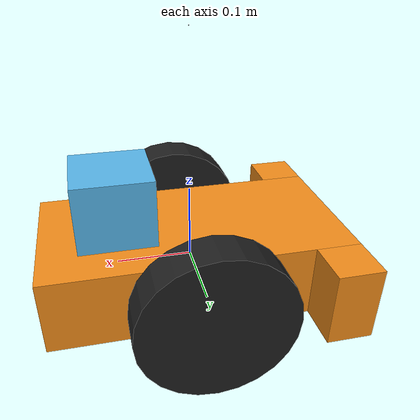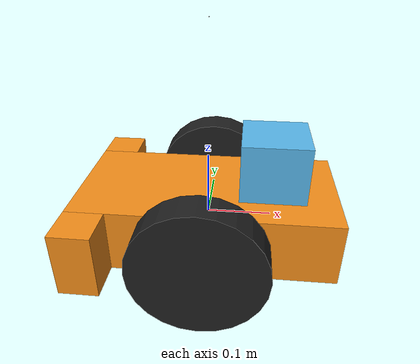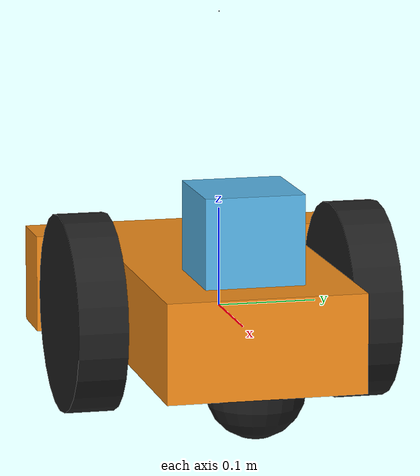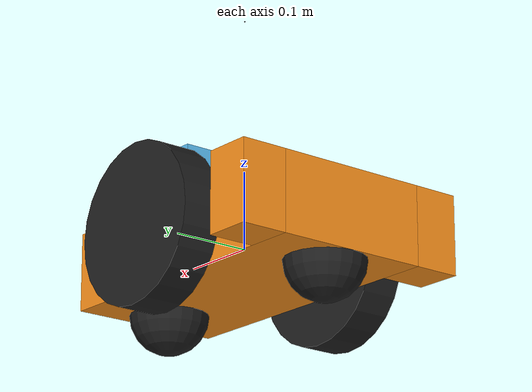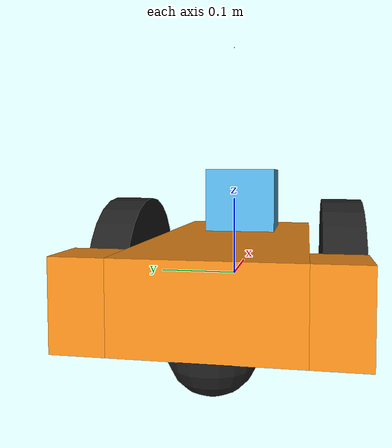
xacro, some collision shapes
<?xml version='1.0'?>

<robot name="robot_model" xmlns:xacro="http://www.ros.org/wiki/xacro">

  <xacro:include filename="$(find ros_tutorial)/urdf/robot_model.gazebo" />
  <link name="robot_footprint"></link>

  <gazebo reference="chassis">
    <material>Gazebo/Orange</material>
  </gazebo>

  <gazebo reference="front_caster">
    <selfCollide>false</selfCollide>
    <material>Gazebo/Black</material>
    <mu1>0</mu1>
    <mu2>0</mu2>
    <minDepth>0.01</minDepth>
    <maxVel>100.0</maxVel>
  </gazebo>

  <gazebo reference="back_caster">
    <selfCollide>false</selfCollide>
    <material>Gazebo/Black</material>
    <mu1>0</mu1>
    <mu2>0</mu2>
    <minDepth>0.01</minDepth>
    <maxVel>100.0</maxVel>
  </gazebo>

  <gazebo reference="right_pad">
    <material>Gazebo/Orange</material>
  </gazebo>
  <gazebo reference="left_pad">
    <material>Gazebo/Orange</material>
  </gazebo>
  <gazebo reference="left_wheel">
    <selfCollid>false</selfCollid>
    <material>Gazebo/Black</material>
    <mu1>10</mu1>
    <mu2>10</mu2>
    <minDepth>0.01</minDepth>
    <maxVel>100.0</maxVel>
  </gazebo>
  <gazebo reference="right_wheel">
    <selfCollid>false</selfCollid>
    <material>Gazebo/Black</material>
    <mu1>10</mu1>
    <mu2>10</mu2>
    <minDepth>0.01</minDepth>
    <maxVel>100.0</maxVel>
  </gazebo>
  <gazebo reference="camera">
    <material>Gazebo/Black</material>
  </gazebo>

  <joint name="robot_footprint_joint" type="fixed">
    <origin xyz="0 0 0" rpy="0 0 0" />
    <parent link="robot_footprint"/>
    <child link="chassis" />
  </joint>

  <link name='chassis'>
    <pose>0 0 0.1 0 0 0</pose>

    <inertial>
      <mass value="15.0"/>
      <origin xyz="0.0 0 0" rpy=" 0 0 0"/>
      <inertia
          ixx="0.1" ixy="0" ixz="0"
          iyy="0.1" iyz="0"
          izz="0.1"
      />
    </inertial>

    <collision name='chassis_collision'>
      <origin xyz="0 0 0" rpy=" 0 0 0"/>
      <geometry>
        <box size=".4 .2 .1"/>
      </geometry>
    </collision>

    <visual name='chassis_visual'>
      <origin xyz="0 0 0" rpy=" 0 0 0"/>
      <geometry>
        <box size=".4 .2 .1"/>
      </geometry>
    </visual>

  </link>

  <link name="front_caster">
    <pose>0 0 0 0 0 0</pose>
    <inertial>
      <mass value="2.0"/>
      <origin xyz="0.0 0 0" rpy=" 0 0 0"/>
      <inertia
              ixx="0.1" ixy="0" ixz="0"
              iyy="0.1" iyz="0"
              izz="0.1"
      />
    </inertial>
    <collision name='front_caster_collision'>
      <origin xyz="0. 0. 0." rpy=" 0 0 0"/>
      <geometry>
        <sphere radius="0.05"/>
      </geometry>
    </collision>

    <visual name='front_caster_visual'>
      <origin xyz="0. 0. 0." rpy=" 0 0 0"/>
      <geometry>
        <sphere radius="0.05"/>
      </geometry>
    </visual>
  </link>

  <joint type="fixed" name="front_caster_joint">
    <origin xyz="0.15 0 -0.05" rpy="0 0 0"/>
    <child link="front_caster"/>
    <parent link="chassis"/>
    <axis xyz="0 1 0" rpy="0 0 0"/>
  </joint>

  <link name="back_caster">
    <pose>0 0 0 0 0 0</pose>
    <inertial>
      <mass value="2.0"/>
      <origin xyz="0.0 0 0" rpy=" 0 0 0"/>
      <inertia
              ixx="0.1" ixy="0" ixz="0"
              iyy="0.1" iyz="0"
              izz="0.1"
      />
    </inertial>
    <collision name='back_caster_collision'>
      <origin xyz="0 0 0" rpy=" 0 0 0"/>
      <geometry>
        <sphere radius="0.05"/>
      </geometry>
    </collision>

    <visual name='back_caster_visual'>
      <origin xyz="0 0 0" rpy=" 0 0 0"/>
      <geometry>
        <sphere radius="0.05"/>
      </geometry>
    </visual>
  </link>

  <joint type="fixed" name="back_caster_joint">
    <origin xyz="-0.15 0 -0.05" rpy="0 0 0"/>
    <child link="back_caster"/>
    <parent link="chassis"/>
    <axis xyz="0 1 0" rpy="0 0 0"/>
  </joint>

  <link name="left_wheel">
    <inertial>
      <mass value="5.0"/>
      <origin xyz="0.0 0 0" rpy=" 0 0 0"/>
      <inertia
              ixx="0.1" ixy="0" ixz="0"
              iyy="0.1" iyz="0"
              izz="0.1"
      />
    </inertial>

    <visual name='left_wheel_visual'>
      <origin xyz="0 0 0" rpy=" 0 1.5707 1.5707"/>
      <geometry>
        <cylinder radius="0.1" length="0.05"/>
      </geometry>
    </visual>

    <collision name='left_wheel_collision'>
      <origin xyz="0 0 0" rpy=" 0 1.5707 1.5707"/>
      <geometry>
        <cylinder radius="0.1" length="0.05"/>
      </geometry>
    </collision>
  </link>

  <joint type="continuous" name="left_wheel_hinge">
    <origin xyz="0 0.14 0" rpy="0 0 0"/>
    <child link="left_wheel"/>
    <parent link="chassis"/>
    <axis xyz="0 1 0" rpy="0 0 0"/>
    <limit effort="100000" velocity="10000"/>
    <dynamics damping="1.0" friction="0.0"/>
  </joint>

  <link name="right_wheel">
    <inertial>
      <mass value="5.0"/>
      <origin xyz="0.0 0 0" rpy=" 0 0 0"/>
      <inertia
              ixx="0.1" ixy="0" ixz="0"
              iyy="0.1" iyz="0"
              izz="0.1"
      />
    </inertial>

    <visual name='right_wheel_visual'>
      <origin xyz="0 0 0" rpy=" 0 1.5707 1.5707"/>
      <geometry>
        <cylinder radius="0.1" length="0.05"/>
      </geometry>
    </visual>

    <collision name='right_wheel_collision'>
      <origin xyz="0 0 0" rpy=" 0 1.5707 1.5707"/>
      <geometry>
        <cylinder radius="0.1" length="0.05"/>
      </geometry>
    </collision>
  </link>

  <joint type="continuous" name="right_wheel_hinge">
    <origin xyz="0 -0.14 0" rpy="0 0 0"/>
    <child link="right_wheel"/>
    <parent link="chassis"/>
    <axis xyz="0 1 0" rpy="0 0 0"/>
    <limit effort="100000" velocity="10000"/>
    <dynamics damping="1.0" friction="0.0"/>
  </joint>

  <!-- CAMERA LINK -->
  <link name="camera">
    <pose>0 0 0 0 0 0</pose>
    <inertial>
      <mass value="0.1"/>
      <origin xyz="0.0 0.0 0.0" rpy="0 0 0"/>
      <inertia
              ixx="1e-6" ixy="0" ixz="0"
              iyy="1e-6" iyz="0"
              izz="1e-6"
      />
    </inertial>

    <visual name='camera_visual'>
      <origin xyz="0 0 0" rpy=" 0 0 0"/>
      <geometry>
        <box size="0.001 0.001 0.001"/>
      </geometry>
    </visual>

    <collision name='camera_collision'>
      <origin xyz="0 0 0" rpy=" 0 0 0"/>
      <geometry>
        <box size="0.001 0.001 0.001"/>
      </geometry>
    </collision>
  </link>

  <joint type="fixed" name="camera_joint">
    <origin xyz="0.0 0.0 0.3" rpy="0 0 0"/>
    <child link="camera"/>
    <parent link="chassis"/>
    <axis xyz="0 1 0" rpy="0 0 0"/>
  </joint>

  <link name="right_pad">
    <pose>0 0 0 0 0 0</pose>
    <inertial>
      <mass value="0.1"/>
      <origin xyz="0 0 0" rpy="0 0 0"/>
      <inertia
              ixx="1e-6" ixy="0" ixz="0"
              iyy="1e-6" iyz="0"
              izz="1e-6"
      />
    </inertial>

    <visual name='right_pad_visual'>
      <origin xyz="0 0 0" rpy=" 0 0 0"/>
      <geometry>
        <box size="0.06 0.06 0.1"/>
      </geometry>
    </visual>

    <collision name='right_pad_collision'>
      <origin xyz="0 0 0" rpy=" 0 0 0"/>
      <geometry>
        <box size="0.06 0.06 0.1"/>
      </geometry>
    </collision>
  </link>

  <joint type="fixed" name="right_pad_joint">
    <origin xyz="-0.17 -0.13 0" rpy="0 0 0"/>
    <child link="right_pad"/>
    <parent link="chassis"/>
    <axis xyz="0 1 0" rpy="0 0 0"/>
  </joint>

  <link name="left_pad">
    <pose>0 0 0 0 0 0</pose>
    <inertial>
      <mass value="0.1"/>
      <origin xyz="0 0 0" rpy="0 0 0"/>
      <inertia
              ixx="1e-6" ixy="0" ixz="0"
              iyy="1e-6" iyz="0"
              izz="1e-6"
      />
    </inertial>

    <visual name='left_pad_visual'>
      <origin xyz="0 0 0" rpy=" 0 0 0"/>
      <geometry>
        <box size="0.06 0.06 0.1"/>
      </geometry>
    </visual>

    <collision name='left_pad_collision'>
      <origin xyz="0 0 0" rpy=" 0 0 0"/>
      <geometry>
        <box size="0.06 0.06 0.1"/>
      </geometry>
    </collision>
  </link>

  <joint type="fixed" name="left_pad_joint">
    <origin xyz="-0.17 0.13 0" rpy="0 0 0"/>
    <child link="left_pad"/>
    <parent link="chassis"/>
    <axis xyz="0 1 0" rpy="0 0 0"/>
  </joint>

  <!-- LIDAR LINK -->
  <link name="hokuyo">
    <inertial>
      <mass value="1e-5"/>
      <origin xyz="0 0 0" rpy="0 0 0"/>
      <inertia
              ixx="1e-6" ixy="0" ixz="0"
              iyy="1e-6" iyz="0"
              izz="1e-6"
      />
    </inertial>

    <visual name='hokuyo_visual'>
      <origin xyz="0 0 0" rpy=" 0 0 0"/>
      <geometry>
        <mesh filename="package://ros_tutorial/meshes/hokuyo.dae"/>
      </geometry>
    </visual>

    <collision name='hokuyo_collision'>
      <origin xyz="0 0 0" rpy=" 0 0 0"/>
      <geometry>
        <box size="0.1 0.1 0.1"/>
      </geometry>
    </collision>
  </link>

  <joint type="fixed" name="hokuyo_joint">
    <origin xyz="0.10 0 0.09" rpy="0 0 0"/>
    <child link="hokuyo"/>
    <parent link="chassis"/>
    <axis xyz="0 1 0" rpy="0 0 0"/>
  </joint>

</robot>
